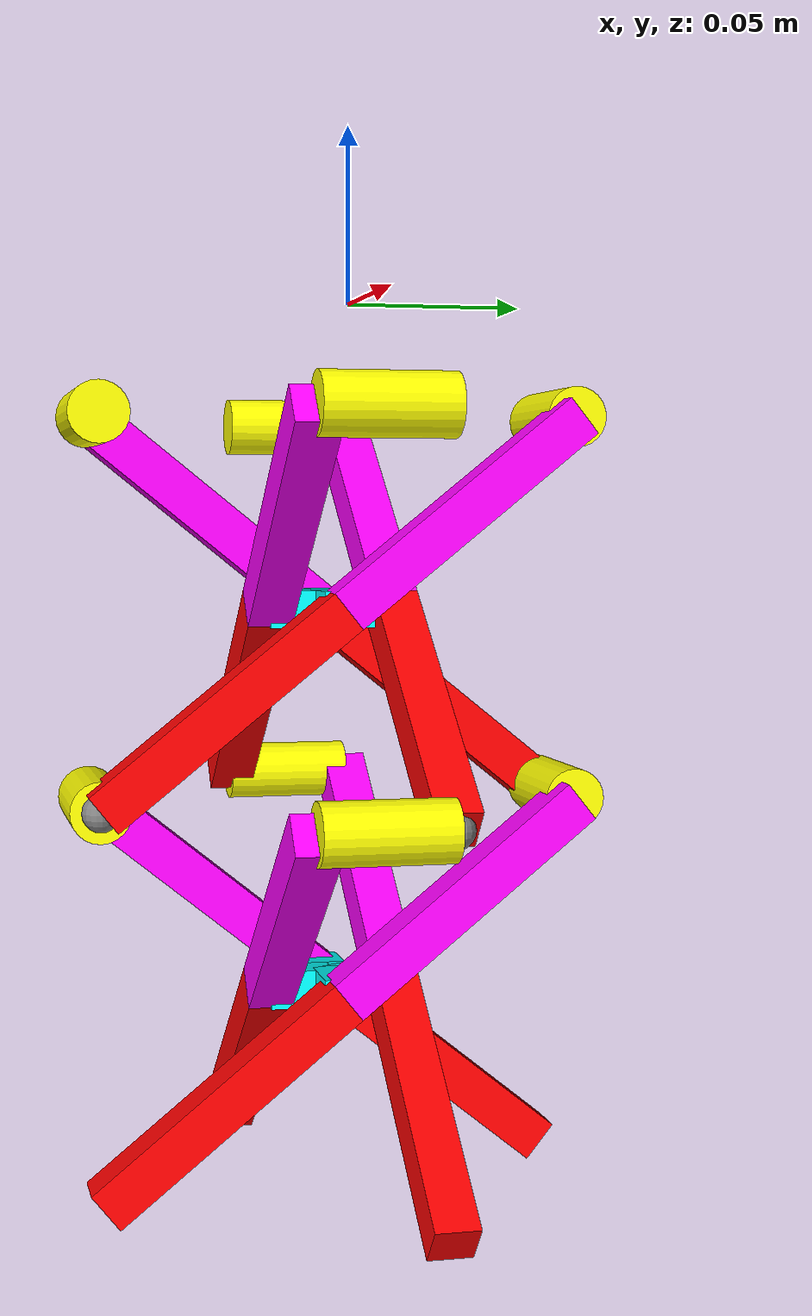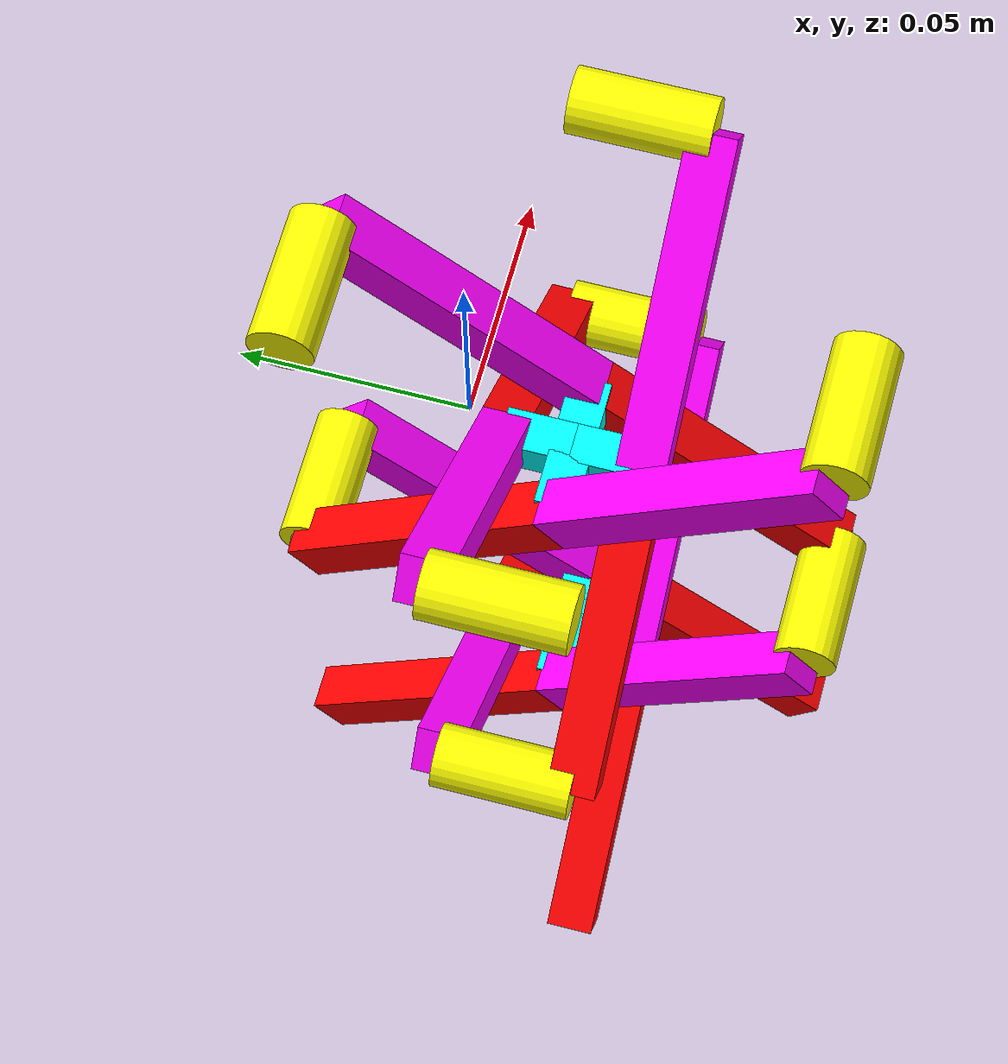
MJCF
<mujoco model="BranchScissorMechanism">
    <compiler angle="radian" />
    <size njmax="500" nconmax="100" />
    <worldbody>
        <body name="four1-1" pos="0.036124 0.003829 -0.185724">
            <inertial pos="0 -0.0085 0" mass="1" diaginertia="1 1 0.083" />
			<geom name="four1-1" pos="0 -0.0085 0" size="0.005 0.0085 0.005" type="box" rgba="0 1 1 1" />
            <body name="arm1-1-1" pos="0 0 0">
                <inertial pos="0.031545 0 -0.025358" quat="0.637678 0.637678 -0.30556 0.30556" mass="1" diaginertia="1 1 0.083" />
				<geom name="arm1-1-1" pos="0.031545 0 -0.025358" quat="0 -0.432127 0 0.9018128" size="0.0059505 0.0059505 0.040474" type="box" rgba="1 0 0 1" />
                <body name="arm1-1-2" pos="0 0 0">
                    <inertial pos="-0.0315452 0 0.025358" quat="0.637678 0.637678 -0.30556 0.30556" mass="1" diaginertia="1 1 0.083" />
					<geom name="arm1-1-2" pos="-0.031545 0 0.025358" quat="0 -0.432127 0 0.9018128" size="0.0059505 0.0059505 0.040474" type="box" rgba="1 0 1 1" />
                    <body name="hand1-1" pos="-0.06309 0 0.050716">
                        <inertial pos="0 -0.017 0" mass="1" diaginertia="1 1 0.083" />
						<geom name="hand1-1" pos="0 -0.017 0" euler="1.57079632679 0 0" size="0.008 0.017" type="cylinder" rgba="1 1 0 1" />
                        <body name="arm2-3-1" pos="0 -0.034 0" quat="0 0 0 1">
                            <inertial pos="-0.031545 0 0.025358" quat="0.637678 0.637678 -0.30556 0.30556" mass="1" diaginertia="1 1 0.083" />
							<geom name="arm2-3-1" pos="-0.031545 0 0.025358" quat="0 -0.432127 0 0.9018128" size="0.0059505 0.0059505 0.040474" type="box" rgba="1 0 0 1" />
                            <joint name="hand1-1-to-arm2-3-1" pos="0 0 0" axis="0 1 0" damping="0.1" />
                            <body name="arm2-3-2" pos="-0.06309 0 0.050716">
                                <inertial pos="-0.031545 0 0.025358" quat="0.637678 0.637678 -0.30556 0.30556" mass="1" diaginertia="1 1 0.083" />
								<geom name="arm2-3-2" pos="-0.031545 0 0.025358" quat="0 -0.432127 0 0.9018128" size="0.0059505 0.0059505 0.040474" type="box" rgba="1 0 1 1" />
                                <body name="hand2-3" pos="-0.06309 0 0.050716">
                                    <inertial pos="0 -0.017 0" mass="1" diaginertia="1 1 0.083" />
									<geom name="hand2-3" pos="0 -0.017 0" euler="1.57079632679 0 0" size="0.008 0.017" type="cylinder" rgba="1 1 0 1" />
                                </body>
                            </body>
                            <body name="four2-3" pos="-0.06309 0 0.050716">
                                <inertial pos="0 -0.0085 0" mass="1" diaginertia="1 1 0.083" />
								<geom name="four2-3" pos="0 -0.0085 0" size="0.005 0.0085 0.005" type="box" rgba="0 1 1 1" />
                                <body name="four2-2" pos="0.017 -0.017 0" quat="0.707107 0 0 -0.707107">
                                    <inertial pos="0 -0.0085 0" mass="1" diaginertia="1 1 0.083" />
									<geom name="four2-2" pos="0 -0.0085 0" size="0.005 0.0085 0.005" type="box" rgba="0 1 1 1" />
                                    <body name="arm2-2-1" pos="0 0 0">
                                        <inertial pos="0.031545 0 -0.025358" quat="0.637678 0.637678 -0.30556 0.30556" mass="1" diaginertia="1 1 0.083" />
										<geom name="arm2-2-1" pos="0.031545 0 -0.025358" quat="0 -0.432127 0 0.9018128" size="0.0059505 0.0059505 0.040474" type="box" rgba="1 0 0 1" />
                                        <body name="arm2-2-2" pos="0 0 0">
                                            <inertial pos="-0.031545 0 0.025358" quat="0.637678 0.637678 -0.30556 0.30556" mass="1" diaginertia="1 1 0.083" />
											<geom name="arm2-2-2" pos="-0.031545 0 0.025358" quat="0 -0.432127 0 0.9018128" size="0.0059505 0.0059505 0.040474" type="box" rgba="1 0 1 1" />
                                            <body name="hand2-2" pos="-0.06309 0 0.050716">
                                                <inertial pos="0 -0.017 0" mass="1" diaginertia="1 1 0.083" />
												<geom name="hand2-2" pos="0 -0.017 0" euler="1.57079632679 0 0" size="0.008 0.017" type="cylinder" rgba="1 1 0 1" />
                                            </body>
                                        </body>
                                    </body>
                                </body>
                                <body name="four2-1" pos="0 -0.034 0" quat="0 0 0 1">
                                    <inertial pos="0 -0.0085 0" mass="1" diaginertia="1 1 0.083" />
									<geom name="four2-1" pos="0 -0.0085 0" size="0.005 0.0085 0.005" type="box" rgba="0 1 1 1" />
                                    <body name="arm2-1-1" pos="0 0 0">
                                        <inertial pos="0.031545 0 -0.025358" quat="0.637678 0.637678 -0.30556 0.30556" mass="1" diaginertia="1 1 0.083" />
										<geom name="arm2-1-1" pos="0.031545 0 -0.025358" quat="0 -0.432127 0 0.9018128" size="0.0059505 0.0059505 0.040474" type="box" rgba="1 0 0 1" />
                                        <body name="arm2-1-2" pos="0 0 0">
                                            <inertial pos="-0.0315452 0 0.025358" quat="0.637678 0.637678 -0.30556 0.30556" mass="1" diaginertia="1 1 0.083" />
                                            <geom name="arm2-1-2" pos="-0.031545 0 0.025358" quat="0 -0.432127 0 0.9018128" size="0.0059505 0.0059505 0.040474" type="box" rgba="1 0 1 1" />
											<body name="hand2-1" pos="-0.06309 0 0.050716">
                                                <inertial pos="0 -0.017 0" mass="1" diaginertia="1 1 0.083" />
												<geom name="hand2-1" pos="0 -0.017 0" euler="1.57079632679 0 0" size="0.008 0.017" type="cylinder" rgba="1 1 0 1" />
                                            </body>
                                        </body>
                                    </body>
                                </body>
                                <body name="four2-4" pos="-0.017 -0.017 0" quat="0.707107 0 0 0.707107">
                                    <inertial pos="0 -0.0085 0" mass="1" diaginertia="1 1 0.083" />
									<geom name="four2-4" pos="0 -0.0085 0" size="0.005 0.0085 0.005" type="box" rgba="0 1 1 1" />
                                    <body name="arm2-4-1" pos="0 0 0">
                                        <inertial pos="0.031545 0 -0.025358" quat="0.637678 0.637678 -0.30556 0.30556" mass="1" diaginertia="1 1 0.083" />
										<geom name="arm2-4-1" pos="0.031545 0 -0.025358" quat="0 -0.432127 0 0.9018128" size="0.0059505 0.0059505 0.040474" type="box" rgba="1 0 0 1" />
                                        <body name="arm2-4-2" pos="0 0 0">
                                            <inertial pos="-0.031545 0 0.025358" quat="0.637678 0.637678 -0.30556 0.30556" mass="1" diaginertia="1 1 0.083" />
                                            <geom name="arm2-4-2" pos="-0.031545 0 0.025358" quat="0 -0.432127 0 0.9018128" size="0.0059505 0.0059505 0.040474" type="box" rgba="1 0 1 1" />
											<body name="hand2-4" pos="-0.06309 0 0.050716">
                                                <inertial pos="0 -0.017 0" mass="1" diaginertia="1 1 0.083" />
												<geom name="hand2-4" pos="0 -0.017 0" euler="1.57079632679 0 0" size="0.008 0.017" type="cylinder" rgba="1 1 0 1" />
                                            </body>
                                        </body>
                                    </body>
                                </body>
                            </body>
                        </body>
                    </body>
                </body>
            </body>
            <body name="four1-2" pos="-0.017 -0.017 0" euler="0 0 1.57079632679">
                <inertial pos="0 -0.0085 0" mass="1" diaginertia="1 1 0.083" />
				<geom name="four1-2" pos="0 -0.0085 0" size="0.005 0.0085 0.005" type="box" rgba="0 1 1 1" />
                <body name="arm1-2-1" pos="0 0 0">
                    <inertial pos="0.031545 0 -0.025358" quat="0.637678 0.637678 -0.30556 0.30556" mass="1" diaginertia="1 1 0.083" />
					<geom name="arm1-2-1" pos="0.031545 0 -0.025358" quat="0 -0.432127 0 0.9018128" size="0.0059505 0.0059505 0.040474" type="box" rgba="1 0 0 1" />
                    <body name="arm1-2-2" pos="0 0 0">
                        <inertial pos="-0.031545 0 0.025358" quat="0.637678 0.637678 -0.30556 0.30556" mass="1" diaginertia="1 1 0.083" />
						<geom name="arm1-2-2" pos="-0.031545 0 0.025358" quat="0 -0.432127 0 0.9018128" size="0.0059505 0.0059505 0.040474" type="box" rgba="1 0 1 1" />
                        <body name="hand1-2" pos="-0.06309 0 0.050716">
                            <inertial pos="0 -0.017 0" mass="1" diaginertia="1 1 0.083" />
							<geom name="hand1-2" pos="0 -0.017 0" euler="1.57079632679 0 0" size="0.008 0.017" type="cylinder" rgba="1 1 0 1" />
							<site name="loop2" pos="0 -0.034 0" />
                        </body>
                    </body>
                </body>
            </body>
            <body name="four1-3" pos="0 -0.034 0" euler="0 0 3.14159265359">
                <inertial pos="0 -0.0085 0" mass="1" diaginertia="1 1 0.083" />
				<geom name="four1-3" pos="0 -0.0085 0" size="0.005 0.0085 0.005" type="box" rgba="0 1 1 1" />
                <body name="arm1-3-1" pos="0 0 0">
                    <inertial pos="0.031545 0 -0.025358" quat="0.637678 0.637678 -0.30556 0.30556" mass="1" diaginertia="1 1 0.083" />
					<geom name="arm1-3-1" pos="0.031545 0 -0.025358" quat="0 -0.432127 0 0.9018128" size="0.0059505 0.0059505 0.040474" type="box" rgba="1 0 0 1" />
                    <body name="arm1-3-2" pos="0 0 0">
                        <inertial pos="-0.031545 0 0.025358" quat="0.637678 0.637678 -0.30556 0.30556" mass="1" diaginertia="1 1 0.083" />
						<geom name="arm1-3-2" pos="-0.031545 0 0.025358" quat="0 -0.432127 0 0.9018128" size="0.0059505 0.0059505 0.040474" type="box" rgba="1 0 1 1" />
                        <body name="hand1-3" pos="-0.06309 0 0.050716">
                            <inertial pos="0 -0.017 0" mass="1" diaginertia="1 1 0.083" />
							<geom name="hand1-3" pos="0 -0.017 0" euler="1.57079632679 0 0" size="0.008 0.017" type="cylinder" rgba="1 1 0 1" />
							<site name="loop3" pos="0 -0.034 0" />
                        </body>
                    </body>
                </body>
            </body>
            <body name="four1-4" pos="0.017 -0.017 0" euler="0 0 -1.57079632679">
                <inertial pos="0 -0.0085 0" mass="1" diaginertia="1 1 0.083" />
				<geom name="four1-4" pos="0 -0.0085 0" size="0.005 0.0085 0.005" type="box" rgba="0 1 1 1" />
                <body name="arm1-4-1" pos="0 0 0">
                    <inertial pos="0.031545 0 -0.025358" quat="0.637678 0.637678 -0.30556 0.30556" mass="1" diaginertia="1 1 0.083" />
					<geom name="arm1-4-1" pos="0.031545 0 -0.025358" quat="0 -0.432127 0 0.9018128" size="0.0059505 0.0059505 0.040474" type="box" rgba="1 0 0 1" />
                    <body name="arm1-4-2" pos="0 0 0">
                        <inertial pos="-0.031545 0 0.025358" quat="0.637678 0.637678 -0.30556 0.30556" mass="1" diaginertia="1 1 0.083" />
						<geom name="arm1-4-2" pos="-0.031545 0 0.025358" quat="0 -0.432127 0 0.9018128" size="0.0059505 0.0059505 0.040474" type="box" rgba="1 0 1 1" />
                        <body name="hand1-4" pos="-0.06309 0 0.050716">
                            <inertial pos="0 -0.017 0" mass="1" diaginertia="1 1 0.083" />
							<geom name="hand1-4" pos="0 -0.017 0" euler="1.57079632679 0 0" size="0.008 0.017" type="cylinder" rgba="1 1 0 1" />
							<site name="loop4" pos="0 -0.034 0" />
                        </body>
                    </body>
                </body>
            </body>
        </body>
    </worldbody>
    <!-- loop joints as equality constraints -->
    <equality>
        <connect anchor="0 -0.034 0" active="true" body1="hand1-2" body2="arm2-4-1" name="loop2" solimp="0.9 0.95 0.001 0.5 6" solref="0.004 1" />
        <connect anchor="0 -0.034 0" active="true" body1="hand1-3" body2="arm2-1-1" name="loop3" solimp="0.9 0.95 0.001 0.5 6" solref="0.004 1" />
        <connect anchor="0 -0.034 0" active="true" body1="hand1-4" body2="arm2-2-1" name="loop4" solimp="0.9 0.95 0.001 0.5 6" solref="0.004 1" />
    </equality>
	<actuator>
		<motor gear="0 1 0 0 1 0" joint="hand1-1-to-arm2-3-1" />
	</actuator>
</mujoco>
